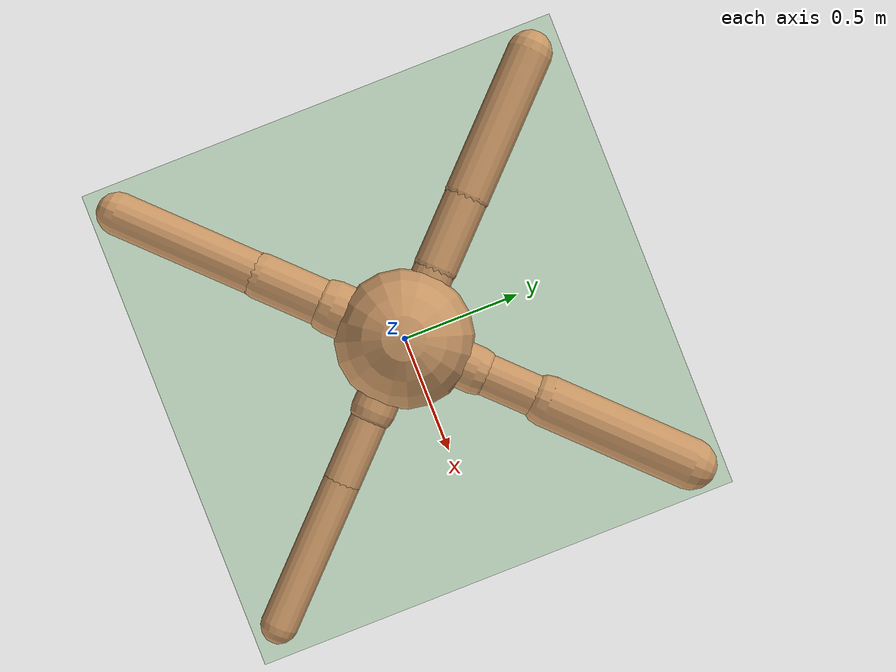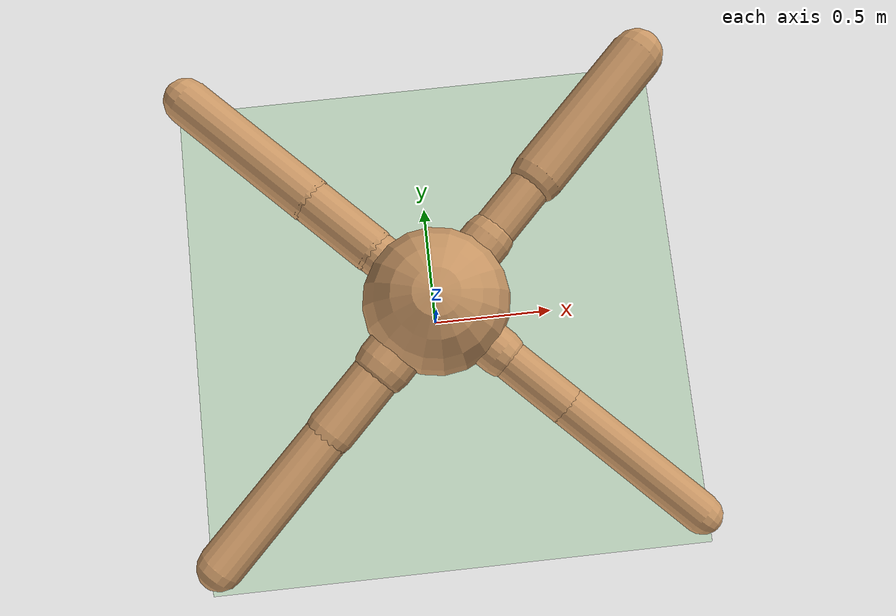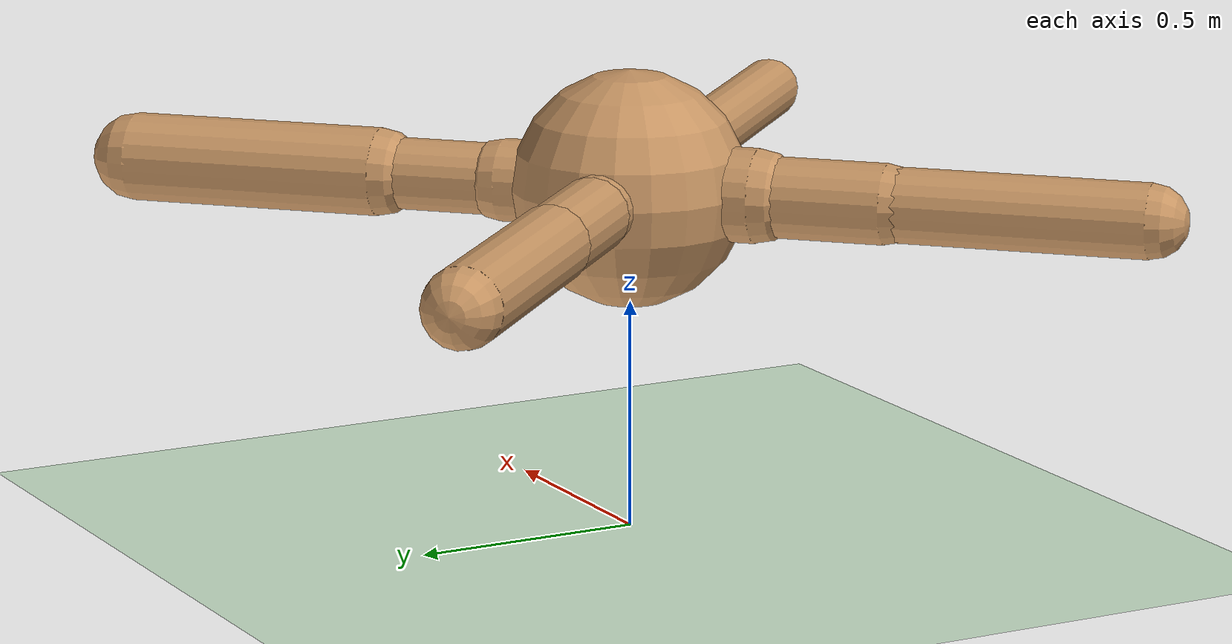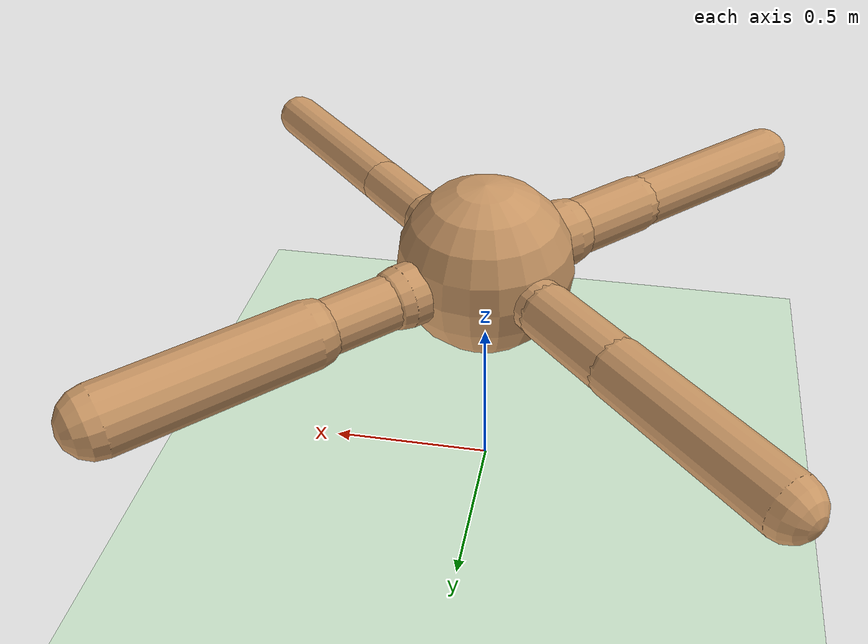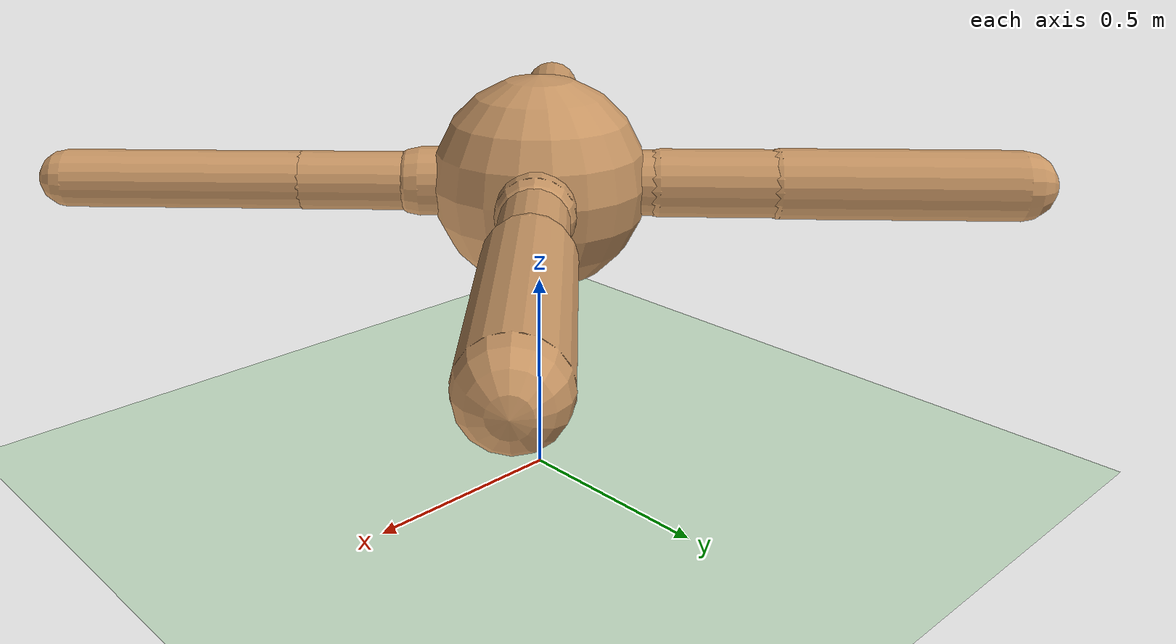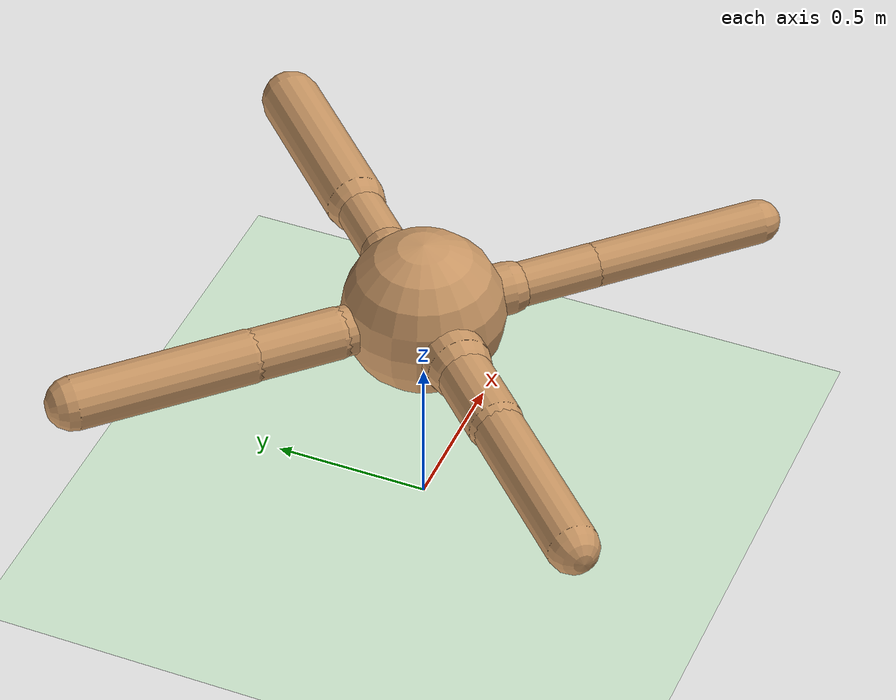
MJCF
<?xml version="1.0" encoding="utf-8"?>
<mujoco model="ant">
	<compiler angle="degree" coordinate="local" inertiafromgeom="true"></compiler>
	<option integrator="RK4" timestep="0.01"></option>
	<custom>
		<numeric data="0.0 0.0 0.55 1.0 0.0 0.0 0.0 0.0 1.0 0.0 -1.0 0.0 -1.0 0.0 1.0" name="init_qpos"></numeric>
	</custom>
	<default>
		<joint armature="1" damping="0.7320671664790368" limited="true"></joint>
		<geom conaffinity="0" condim="3" density="5.0" friction="1.2815244459042152 0.3554823757297675 0.5728398498831222" margin="0.01" rgba="0.8 0.6 0.4 1"></geom>
	</default>
	<asset>
		<texture builtin="gradient" height="100" rgb1="1 1 1" rgb2="0 0 0" type="skybox" width="100"></texture>
		<texture builtin="flat" height="1278" mark="cross" markrgb="1 1 1" name="texgeom" random="0.01" rgb1="0.8 0.6 0.4" rgb2="0.8 0.6 0.4" type="cube" width="127"></texture>
		<texture builtin="checker" height="100" name="texplane" rgb1="0 0 0" rgb2="0.8 0.8 0.8" type="2d" width="100"></texture>
		<material name="MatPlane" reflectance="0.5" shininess="1" specular="1" texrepeat="60 60" texture="texplane"></material>
		<material name="geom" texture="texgeom" texuniform="true"></material>
	</asset>
	<worldbody>
		<light cutoff="100" diffuse="1 1 1" dir="-0 0 -1.3" directional="true" exponent="1" pos="0 0 1.3" specular=".1 .1 .1"></light>
		<geom conaffinity="1" condim="3" material="MatPlane" name="floor" pos="0 0 0" rgba="0.8 0.9 0.8 1" size="50.283400588248284 33.19115024857081 51.20043137004822" type="plane"></geom>
		<body name="torso" pos="0 0 0.75">
			<camera name="track" mode="trackcom" pos="0 -3 0.3" xyaxes="1 0 0 0 0 1"></camera>
			<geom name="torso_geom" pos="0 0 0" size="0.2563394705476224" type="sphere"></geom>
			<joint armature="0" damping="0.0" limited="false" margin="0.01" name="root" pos="0 0 0" type="free"></joint>
			<body name="front_left_leg" pos="0 0 0">
				<geom fromto="0.0 0.0 0.0 0.2 0.2 0.0" name="aux_1_geom" size="0.09000375722446942" type="capsule"></geom>
				<body name="aux_1" pos="0.2 0.2 0">
					<joint axis="0 0 1" name="hip_1" pos="0.0 0.0 0.0" range="-30 30" type="hinge"></joint>
					<geom fromto="0.0 0.0 0.0 0.2 0.2 0.0" name="left_leg_geom" size="0.0781270716115976" type="capsule"></geom>
					<body pos="0.2 0.2 0">
						<joint axis="-1 1 0" name="ankle_1" pos="0.0 0.0 0.0" range="30 70" type="hinge"></joint>
						<geom fromto="0.0 0.0 0.0 0.4 0.4 0.0" name="left_ankle_geom" size="0.09642542770588453" type="capsule"></geom>
					</body>
				</body>
			</body>
			<body name="front_right_leg" pos="0 0 0">
				<geom fromto="0.0 0.0 0.0 -0.2 0.2 0.0" name="aux_2_geom" size="0.07862388299452044" type="capsule"></geom>
				<body name="aux_2" pos="-0.2 0.2 0">
					<joint axis="0 0 1" name="hip_2" pos="0.0 0.0 0.0" range="-30 30" type="hinge"></joint>
					<geom fromto="0.0 0.0 0.0 -0.2 0.2 0.0" name="right_leg_geom" size="0.08183869677751439" type="capsule"></geom>
					<body pos="-0.2 0.2 0">
						<joint axis="1 1 0" name="ankle_2" pos="0.0 0.0 0.0" range="-70 -30" type="hinge"></joint>
						<geom fromto="0.0 0.0 0.0 -0.4 0.4 0.0" name="right_ankle_geom" size="0.08453835853697726" type="capsule"></geom>
					</body>
				</body>
			</body>
			<body name="back_leg" pos="0 0 0">
				<geom fromto="0.0 0.0 0.0 -0.2 -0.2 0.0" name="aux_3_geom" size="0.10217731135013525" type="capsule"></geom>
				<body name="aux_3" pos="-0.2 -0.2 0">
					<joint axis="0 0 1" name="hip_3" pos="0.0 0.0 0.0" range="-30 30" type="hinge"></joint>
					<geom fromto="0.0 0.0 0.0 -0.2 -0.2 0.0" name="back_leg_geom" size="0.08715183873967508" type="capsule"></geom>
					<body pos="-0.2 -0.2 0">
						<joint axis="-1 1 0" name="ankle_3" pos="0.0 0.0 0.0" range="-70 -30" type="hinge"></joint>
						<geom fromto="0.0 0.0 0.0 -0.4 -0.4 0.0" name="third_ankle_geom" size="0.08107606447315517" type="capsule"></geom>
					</body>
				</body>
			</body>
			<body name="right_back_leg" pos="0 0 0">
				<geom fromto="0.0 0.0 0.0 0.2 -0.2 0.0" name="aux_4_geom" size="0.08272835130033711" type="capsule"></geom>
				<body name="aux_4" pos="0.2 -0.2 0">
					<joint axis="0 0 1" name="hip_4" pos="0.0 0.0 0.0" range="-30 30" type="hinge"></joint>
					<geom fromto="0.0 0.0 0.0 0.2 -0.2 0.0" name="rightback_leg_geom" size="0.07028816868482063" type="capsule"></geom>
					<body pos="0.2 -0.2 0">
						<joint axis="1 1 0" name="ankle_4" pos="0.0 0.0 0.0" range="30 70" type="hinge"></joint>
						<geom fromto="0.0 0.0 0.0 0.4 -0.4 0.0" name="fourth_ankle_geom" size="0.06976063360417523" type="capsule"></geom>
					</body>
				</body>
			</body>
		</body>
	</worldbody>
	<actuator>
		<motor ctrllimited="true" ctrlrange="-1.0 1.0" joint="hip_4" gear="150"></motor>
		<motor ctrllimited="true" ctrlrange="-1.0 1.0" joint="ankle_4" gear="150"></motor>
		<motor ctrllimited="true" ctrlrange="-1.0 1.0" joint="hip_1" gear="150"></motor>
		<motor ctrllimited="true" ctrlrange="-1.0 1.0" joint="ankle_1" gear="150"></motor>
		<motor ctrllimited="true" ctrlrange="-1.0 1.0" joint="hip_2" gear="150"></motor>
		<motor ctrllimited="true" ctrlrange="-1.0 1.0" joint="ankle_2" gear="150"></motor>
		<motor ctrllimited="true" ctrlrange="-1.0 1.0" joint="hip_3" gear="150"></motor>
		<motor ctrllimited="true" ctrlrange="-1.0 1.0" joint="ankle_3" gear="150"></motor>
	</actuator>
</mujoco>
